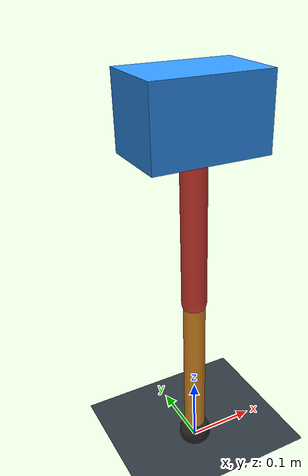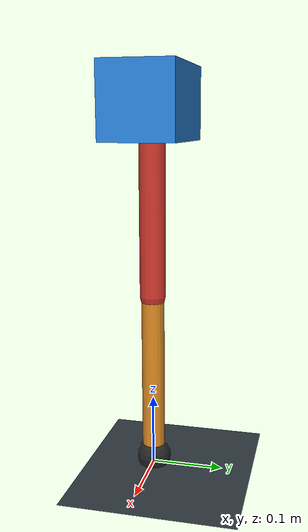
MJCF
<mujoco model="single_axis_two_bar">
  <compiler angle="radian" inertiafromgeom="true"/>
  <option timestep="0.001" integrator="implicitfast" gravity="0 0 -9.81"/>
  <default>
    <joint damping="0.08"/>
    <geom friction="1.2 0.01 0.0001" condim="3"/>
  </default>
  <worldbody>
    <geom name="floor" type="plane" size="5 5 0.1" rgba="0.18 0.22 0.25 1"/>
    <body name="carriage" pos="0 0 0.513474810539775">
      <joint name="pole_slide" type="slide" axis="0 0 1"/>
      <geom name="payload" type="box" size="0.08 0.05 0.05" mass="2.0330192587915894" rgba="0.2 0.6 1 1"/>
      <body name="thigh" pos="0 0 0">
        <joint name="hip" type="hinge" axis="0 1 0"/>
        <geom name="thigh_link" type="capsule" fromto="0 0 0 0 0 -0.2628718281685771" size="0.018" mass="0.18729965111485528" rgba="0.9 0.25 0.2 1"/>
        <body name="shank" pos="0 0 -0.2628718281685771">
          <joint name="knee" type="hinge" axis="0 1 0"/>
          <geom name="shank_link" type="capsule" fromto="0 0 0 0 0 -0.24071045073840738" size="0.016" mass="0.1715093768590931" rgba="0.95 0.6 0.15 1"/>
          <geom name="foot" type="sphere" pos="0 0 -0.24071045073840738" size="0.025" mass="0.03" rgba="0.15 0.15 0.15 1"/>
          <site name="toe" pos="0 0 -0.24071045073840738" size="0.008"/>
        </body>
      </body>
    </body>
  </worldbody>
  <actuator>
    <motor name="hip_motor" joint="hip" ctrlrange="-27.235174671788243 27.235174671788243"/>
    <motor name="knee_motor" joint="knee" ctrlrange="-36.24799445405371 36.24799445405371"/>
  </actuator>
</mujoco>
